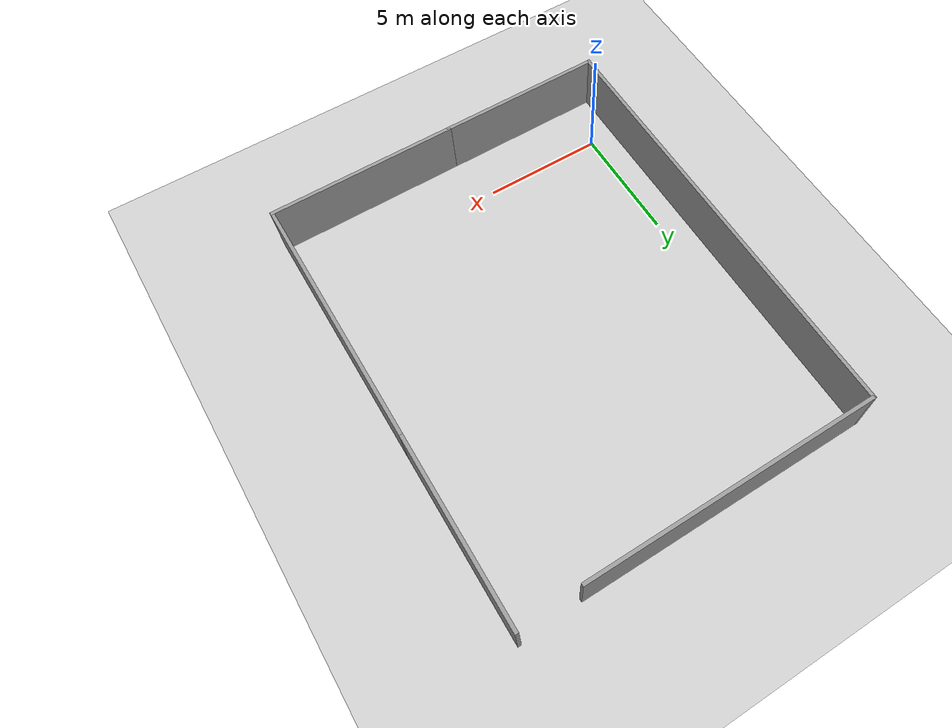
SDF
<sdf version='1.6'>
  <world name='default'>
  <plugin name='ardupilot_sitl_gazebo_plugin' filename='libardupilot_sitl_gazebo_plugin_rover.so'>
      <UAV_MODEL>rover</UAV_MODEL>
    </plugin>
    <light name='sun' type='directional'>
      <cast_shadows>1</cast_shadows>
      <pose frame=''>0 0 10 0 -0 0</pose>
      <diffuse>0.8 0.8 0.8 1</diffuse>
      <specular>0.2 0.2 0.2 1</specular>
      <attenuation>
        <range>1000</range>
        <constant>0.9</constant>
        <linear>0.01</linear>
        <quadratic>0.001</quadratic>
      </attenuation>
      <direction>-0.5 0.1 -0.9</direction>
    </light>
    <model name='ground_plane'>
      <static>1</static>
      <link name='link'>
        <collision name='collision'>
          <geometry>
            <plane>
              <normal>0 0 1</normal>
              <size>100 100</size>
            </plane>
          </geometry>
          <surface>
            <friction>
              <ode>
                <mu>100</mu>
                <mu2>50</mu2>
              </ode>
              <torsional>
                <ode/>
              </torsional>
            </friction>
            <contact>
              <ode/>
            </contact>
            <bounce/>
          </surface>
          <max_contacts>10</max_contacts>
        </collision>
        <visual name='visual'>
          <cast_shadows>0</cast_shadows>
          <geometry>
            <plane>
              <normal>0 0 1</normal>
              <size>100 100</size>
            </plane>
          </geometry>
          <material>
            <script>
              <uri>file://media/materials/scripts/gazebo.material</uri>
              <name>Gazebo/Grey</name>
            </script>
          </material>
        </visual>
        <self_collide>0</self_collide>
        <kinematic>0</kinematic>
      </link>
    </model>
    <gravity>0 0 -9.8</gravity>
    <magnetic_field>6e-06 2.3e-05 -4.2e-05</magnetic_field>
    <atmosphere type='adiabatic'/>
    <physics name='default_physics' default='0' type='ode'>
      <max_step_size>0.001</max_step_size>
      <real_time_factor>1</real_time_factor>
      <real_time_update_rate>1000</real_time_update_rate>
    </physics>
    <scene>
      <ambient>0.4 0.4 0.4 1</ambient>
      <background>0.7 0.7 0.7 1</background>
      <shadows>1</shadows>
    </scene>
    <spherical_coordinates>
      <surface_model>EARTH_WGS84</surface_model>
      <latitude_deg>0</latitude_deg>
      <longitude_deg>0</longitude_deg>
      <elevation>0</elevation>
      <heading_deg>0</heading_deg>
    </spherical_coordinates>
    <model name='EmptyMaze'>
      <pose frame=''>6.18414 7.04446 0 0 -0 0</pose>
      <link name='Wall_0'>
        <collision name='Wall_0_Collision'>
          <geometry>
            <box>
              <size>7 0.15 2.5</size>
            </box>
          </geometry>
          <pose frame=''>0 0 1.25 0 -0 0</pose>
          <max_contacts>10</max_contacts>
          <surface>
            <contact>
              <ode/>
            </contact>
            <bounce/>
            <friction>
              <torsional>
                <ode/>
              </torsional>
              <ode/>
            </friction>
          </surface>
        </collision>
        <visual name='Wall_0_Visual'>
          <pose frame=''>0 0 1.25 0 -0 0</pose>
          <geometry>
            <box>
              <size>7 0.15 2.5</size>
            </box>
          </geometry>
          <material>
            <script>
              <uri>file://media/materials/scripts/gazebo.material</uri>
              <name>Gazebo/Grey</name>
            </script>
            <ambient>1 1 1 1</ambient>
          </material>
          <meta>
            <layer>0</layer>
          </meta>
        </visual>
        <pose frame=''>-3.925 -9.225 0 0 -0 3.14159</pose>
        <self_collide>0</self_collide>
        <kinematic>0</kinematic>
      </link>
      <link name='Wall_2'>
        <collision name='Wall_2_Collision'>
          <geometry>
            <box>
              <size>8 0.15 2.5</size>
            </box>
          </geometry>
          <pose frame=''>0 0 1.25 0 -0 0</pose>
          <max_contacts>10</max_contacts>
          <surface>
            <contact>
              <ode/>
            </contact>
            <bounce/>
            <friction>
              <torsional>
                <ode/>
              </torsional>
              <ode/>
            </friction>
          </surface>
        </collision>
        <visual name='Wall_2_Visual'>
          <pose frame=''>0 0 1.25 0 -0 0</pose>
          <geometry>
            <box>
              <size>8 0.15 2.5</size>
            </box>
          </geometry>
          <material>
            <script>
              <uri>file://media/materials/scripts/gazebo.material</uri>
              <name>Gazebo/Grey</name>
            </script>
            <ambient>1 1 1 1</ambient>
          </material>
          <meta>
            <layer>0</layer>
          </meta>
        </visual>
        <pose frame=''>3.425 -9.225 0 0 -0 0</pose>
        <self_collide>0</self_collide>
        <kinematic>0</kinematic>
      </link>
      <link name='Wall_4'>
        <collision name='Wall_4_Collision'>
          <geometry>
            <box>
              <size>11 0.15 2.5</size>
            </box>
          </geometry>
          <pose frame=''>0 0 1.25 0 -0 0</pose>
          <max_contacts>10</max_contacts>
          <surface>
            <contact>
              <ode/>
            </contact>
            <bounce/>
            <friction>
              <torsional>
                <ode/>
              </torsional>
              <ode/>
            </friction>
          </surface>
        </collision>
        <visual name='Wall_4_Visual'>
          <pose frame=''>0 0 1.25 0 -0 0</pose>
          <geometry>
            <box>
              <size>11 0.15 2.5</size>
            </box>
          </geometry>
          <material>
            <script>
              <uri>file://media/materials/scripts/gazebo.material</uri>
              <name>Gazebo/Grey</name>
            </script>
            <ambient>1 1 1 1</ambient>
          </material>
          <meta>
            <layer>0</layer>
          </meta>
        </visual>
        <pose frame=''>7.35 -3.8 0 0 -0 1.5708</pose>
        <self_collide>0</self_collide>
        <kinematic>0</kinematic>
      </link>
      <link name='Wall_6'>
        <collision name='Wall_6_Collision'>
          <geometry>
            <box>
              <size>18.5 0.15 2.5</size>
            </box>
          </geometry>
          <pose frame=''>0 0 1.25 0 -0 0</pose>
          <max_contacts>10</max_contacts>
          <surface>
            <contact>
              <ode/>
            </contact>
            <bounce/>
            <friction>
              <torsional>
                <ode/>
              </torsional>
              <ode/>
            </friction>
          </surface>
        </collision>
        <visual name='Wall_6_Visual'>
          <pose frame=''>0 0 1.25 0 -0 0</pose>
          <geometry>
            <box>
              <size>18.5 0.15 2.5</size>
            </box>
          </geometry>
          <material>
            <script>
              <uri>file://media/materials/scripts/gazebo.material</uri>
              <name>Gazebo/Grey</name>
            </script>
            <ambient>1 1 1 1</ambient>
          </material>
          <meta>
            <layer>0</layer>
          </meta>
        </visual>
        <pose frame=''>-7.35 -0.049999 0 0 -0 1.5708</pose>
        <self_collide>0</self_collide>
        <kinematic>0</kinematic>
      </link>
      <link name='Wall_7'>
        <collision name='Wall_7_Collision'>
          <geometry>
            <box>
              <size>12.25 0.15 2.5</size>
            </box>
          </geometry>
          <pose frame=''>0 0 1.25 0 -0 0</pose>
          <max_contacts>10</max_contacts>
          <surface>
            <contact>
              <ode/>
            </contact>
            <bounce/>
            <friction>
              <torsional>
                <ode/>
              </torsional>
              <ode/>
            </friction>
          </surface>
        </collision>
        <visual name='Wall_7_Visual'>
          <pose frame=''>0 0 1.25 0 -0 0</pose>
          <geometry>
            <box>
              <size>12.25 0.15 2.5</size>
            </box>
          </geometry>
          <material>
            <script>
              <uri>file://media/materials/scripts/gazebo.material</uri>
              <name>Gazebo/Grey</name>
            </script>
            <ambient>1 1 1 1</ambient>
          </material>
          <meta>
            <layer>0</layer>
          </meta>
        </visual>
        <pose frame=''>-1.3 9.125 0 0 -0 0</pose>
        <self_collide>0</self_collide>
        <kinematic>0</kinematic>
      </link>
      <link name='Wall_9'>
        <collision name='Wall_9_Collision'>
          <geometry>
            <box>
              <size>7.75 0.15 2.5</size>
            </box>
          </geometry>
          <pose frame=''>0 0 1.25 0 -0 0</pose>
          <max_contacts>10</max_contacts>
          <surface>
            <contact>
              <ode/>
            </contact>
            <bounce/>
            <friction>
              <torsional>
                <ode/>
              </torsional>
              <ode/>
            </friction>
          </surface>
        </collision>
        <visual name='Wall_9_Visual'>
          <pose frame=''>0 0 1.25 0 -0 0</pose>
          <geometry>
            <box>
              <size>7.75 0.15 2.5</size>
            </box>
          </geometry>
          <material>
            <script>
              <uri>file://media/materials/scripts/gazebo.material</uri>
              <name>Gazebo/Grey</name>
            </script>
            <ambient>1 1 1 1</ambient>
          </material>
          <meta>
            <layer>0</layer>
          </meta>
        </visual>
        <pose frame=''>7.35 5.425 0 0 -0 1.5708</pose>
        <self_collide>0</self_collide>
        <kinematic>0</kinematic>
      </link>
      <static>1</static>
    </model>

    <gui fullscreen='0'>
      <camera name='user_camera'>
        <pose frame=''>6.44497 -20.1089 24.1578 -0 0.853796 1.6242</pose>
        <view_controller>orbit</view_controller>
        <projection_type>perspective</projection_type>
      </camera>
    </gui>

        <!-- Pluggin for settin regions that will detect whether the rover is in it or no -->
	<plugin filename="libSimEventsPlugin.so" name="event_plugin">
    <region>
	    <name>maze_exit</name>
	    <volume>
	      <min>10.891129 16.497023 -1</min>
	      <max>13.609080 17.753689 1</max>
	    </volume>
	 </region>
	 <event>
	    <name>maze_exit_event</name>
	    <type>occupied</type>
	    <region>maze_exit</region>
	    <topic>~/region</topic>
	    <msg_data>exited_the_maze</msg_data>
	  </event>
	</plugin>

  </world>
</sdf>
